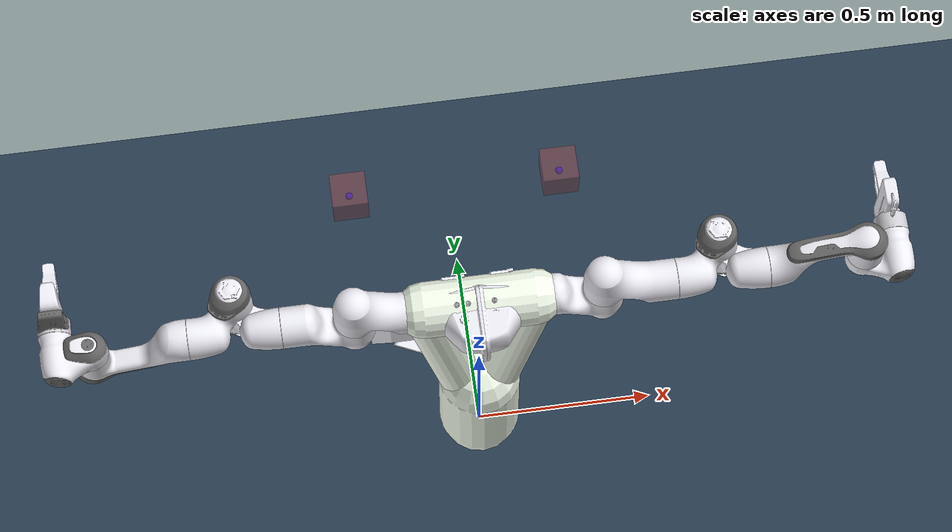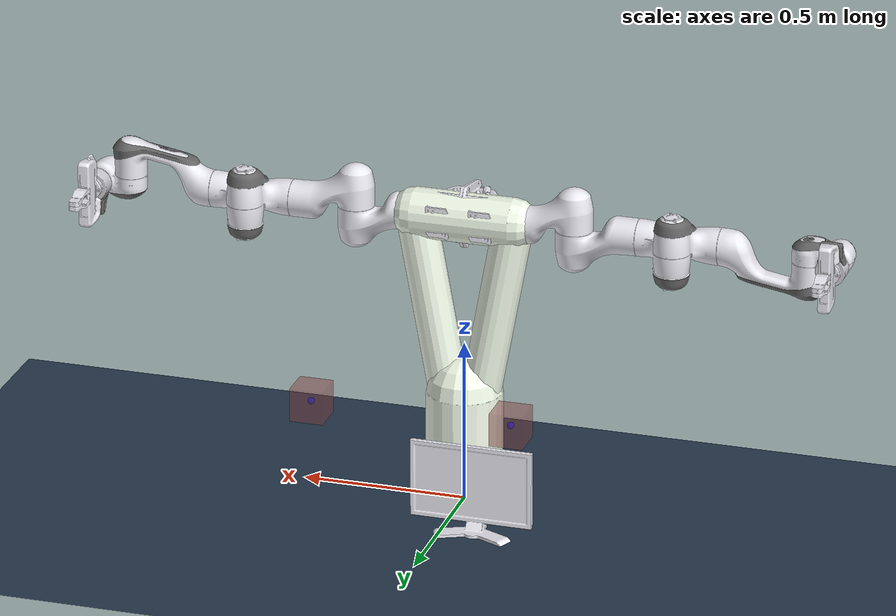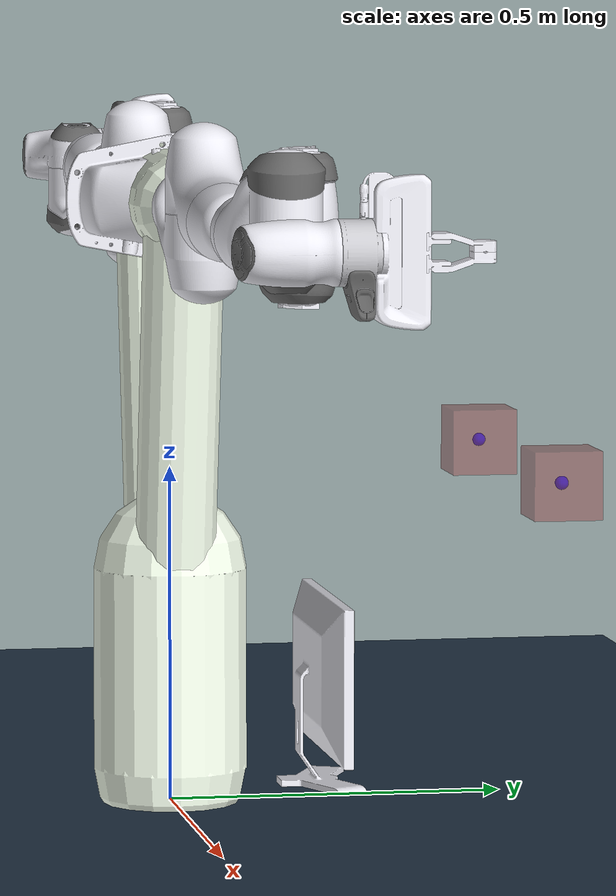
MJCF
<mujoco model="dual-panda v01">

    <include file="panda/assets/basic_scene.xml" />
    <include file="panda/assets/assets.xml" />
    <include file="panda/assets/gripper_assets.xml" />
    <compiler meshdir="" />

    <default>
        <default class='torso'>
            <geom group='2' contype='0' conaffinity='0' rgba=".95 .99 .92 1" />
        </default>/ </default>

    <worldbody>

        <body name='torso' childclass='torso'>
            <geom name='shoulders' type='capsule' size='.075' fromto='.15 0 .9 -.15 0 .9' />
            <geom name='absL' type='capsule' size='.06' fromto='.15 0 .9 0.05 0 .35' />
            <geom name='absR' type='capsule' size='.06' fromto='-.15 0 .9 -.05 0 .35' />
            <geom name='legs' type='capsule' size='.115' fromto='0 0 .35 0 0 0.05' />

            <body name='leftarm' pos='0 0 .9' euler='0 -1.57 1.57'>
                <include file="panda/assets/chainL.xml" />
            </body>

            <body name='rightarm' pos='0 0 .9' euler='0 1.57 1.57'>
                <include file="panda/assets/chainR.xml" />
            </body>

        </body>

        <body name = "collision_object" pos = "0.0 .3 0.0" quat="0 0 0 1">
            <joint type="free" name="object_virtual_joint" pos = "0.0 1.0 0.0" damping="10"/>
            <geom class="object_viz" mesh="monitor_viz"/>
            <geom class="object_col" mesh="monitor_col"/>
            <inertial pos="0 0 0" mass="1.0" diaginertia="2 2 2"/>
        </body>

    </worldbody>

    <include file='panda/assets/actuatorL.xml' />
    <include file='panda/assets/gripper_actuatorL.xml' />
    <include file='panda/assets/actuatorR.xml' />
    <include file='panda/assets/gripper_actuatorR.xml' />

</mujoco>

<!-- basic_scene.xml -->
<mujocoinclude>
    <asset>
        <texture name="texplane" type="2d" builtin="checker" rgb1=".2 .3 .4" rgb2=".1 0.15 0.2"
                width="512" height="512"/>
        <material name="MatGnd" reflectance="0.5" texture="texplane" texrepeat="1 1" texuniform="true"/>
    </asset>

    <worldbody>
        <light directional="false" diffuse=".8 .8 .8" specular="0.3 0.3 0.3" pos="1  1 3" dir="-1 -1 -3"/>
        <light directional="false" diffuse=".8 .8 .8" specular="0.3 0.3 0.3" pos="1 -1 3" dir="-1 1 -3"/>
        <light directional="false" diffuse=".8 .8 .8" specular="0.3 0.3 0.3" pos="-1 0 3" dir="1 0 -3" />
        <geom name="ground" pos="0 0 0" size="5 5 10" material="MatGnd" type="plane" contype="1" conaffinity="1"/>
        <body name="targetL" pos="-0.3 0.53 0.5" quat="0 0 1 0" mocap="true">
            <geom type="box" size=".05 .05 .05" contype="0" conaffinity="0" rgba=".6 .3 .3 .5"/>
            <site type="sphere" size="0.01" rgba="0 0 1 1" group="1"/>
        </body>
        <body name="targetR" pos="0.3 0.53 0.5" quat="0 1 0 0" mocap="true">
            <geom type="box" size=".05 .05 .05" contype="0" conaffinity="0" rgba=".6 .3 .3 .5"/>
            <site type="sphere" size="0.01" rgba="0 0 1 1" group="1"/>
        </body>
    </worldbody>
    <keyframe>
        <key name="home" qpos="0 0 0 0 0 0 0 0 0 0 0 0 0 0 0 0 0 0 -0.15 0.3 0 0 0 0 0" ctrl="0 0 0 0 0 0 0 0 0 0 0 0 0 0 0 0 0 0"/>
    </keyframe>
</mujocoinclude>

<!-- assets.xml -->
<mujocoinclude>
    <compiler angle="radian"/>
    <option timestep="0.002"/>
    <size nuser_actuator="5"/>
    <option integrator="implicit"/>
    <asset>
        <mesh name="link0_col" file="../meshes/collision/link0.stl"/>
        <mesh name="link1_col" file="../meshes/collision/link1.stl"/>
        <mesh name="link2_col" file="../meshes/collision/link2.stl"/>
        <mesh name="link3_col" file="../meshes/collision/link3.stl"/>
        <mesh name="link4_col" file="../meshes/collision/link4.stl"/>
        <mesh name="link5_col" file="../meshes/collision/link5.stl"/>
        <mesh name="link6_col" file="../meshes/collision/link6.stl"/>
        <mesh name="link7_col" file="../meshes/collision/link7.stl"/>
        <mesh name="hand_col" file="../meshes/collision/hand.stl"/>
        <mesh name="link0_viz" file="../meshes/visual/link0.stl"/>
        <mesh name="link1_viz" file="../meshes/visual/link1.stl"/>
        <mesh name="link2_viz" file="../meshes/visual/link2.stl"/>
        <mesh name="link3_viz" file="../meshes/visual/link3.stl"/>
        <mesh name="link3_dark_viz" file="../meshes/visual/link3_dark.stl" scale="1.01 1.01 1.01"/>
        <mesh name="link4_viz" file="../meshes/visual/link4.stl"/>
        <mesh name="link4_dark_viz" file="../meshes/visual/link4_dark.stl" scale="1.01 1.01 1.01"/>
        <mesh name="link5_viz" file="../meshes/visual/link5.stl"/>
        <mesh name="link5_dark_viz" file="../meshes/visual/link5_dark.stl" scale="1.01 1.01 1.01"/>
        <mesh name="link6_viz" file="../meshes/visual/link6.stl"/>
        <mesh name="link6_dark_viz" file="../meshes/visual/link6_dark.stl" scale="1.01 1.01 1.01"/>
        <mesh name="link7_viz" file="../meshes/visual/link7.stl"/>
        <mesh name="link7_dark_viz" file="../meshes/visual/link7_dark.stl" scale="1.01 1.01 1.01"/>
        <mesh name="hand_viz" file="../meshes/visual/hand.stl"/>
    </asset>

    <asset>
        <mesh name="monitor_col" file="../meshes/collision/objects/monitor.stl" scale = "0.02 0.02 0.02"/>
        <mesh name="monitor_viz" file="../meshes/visual/objects/monitor.stl" scale = "0.02 0.02 0.02"/>
    </asset>

    <default>
        <default class = "object">
            <default class="object_viz">
                <geom contype="0" conaffinity="0" group="0" type="mesh" rgba=".92 .92 .95 1"/>
            </default>
            <default class="object_col">
                <geom contype="1" conaffinity="1" group="3" type="mesh" rgba=".5 .6 .7 1"/>
            </default>
        </default>
    </default>

    <default>
        <default class="panda">
            <joint pos="0 0 0" axis="0 0 1" limited="true"/>
            <default class="panda_viz">
                <geom contype="0" conaffinity="0" group="0" type="mesh" rgba=".92 .92 .95 1"/>
            </default>
            <default class="panda_grey_viz">
                <geom contype="0" conaffinity="0" group="0" type="mesh" rgba=".4 .4 .4 1"/>
            </default>

            <default class="panda_col">
                <geom contype="1" conaffinity="1" group="3" type="mesh" rgba=".5 .6 .7 1"/>
            </default>
            <default class="panda_arm">
                <joint damping="100"/>
            </default>
             <default class="panda_forearm">
                <joint damping="10"/>
            </default>
             <default class="panda_finger">
                <joint damping="10" armature='5'/>
                <geom friction="1 0.5 0.0001" solref="0.01 1" solimp="0.8 0.9 0.001" margin="0.001" user="0" rgba="0.5 0.6 0.7 .4" contype="1" conaffinity="0" condim="6" group="3" />
                <position user="1002 40 2001 -0.0001 0.0001"/>
            </default>
        </default>

    </default>

    <sensor>
        <jointpos name="fr_arm_jp1" joint="left_panda_joint1"/>
        <jointpos name="fr_arm_jp2" joint="left_panda_joint2"/>
        <jointpos name="fr_arm_jp3" joint="left_panda_joint3"/>
        <jointpos name="fr_arm_jp4" joint="left_panda_joint4"/>
        <jointpos name="fr_arm_jp5" joint="left_panda_joint5"/>
        <jointpos name="fr_arm_jp6" joint="left_panda_joint6"/>
        <jointpos name="fr_arm_jp7" joint="left_panda_joint7"/>
        <jointvel name="fr_arm_jv1" joint="left_panda_joint1"/>
        <jointvel name="fr_arm_jv2" joint="left_panda_joint2"/>
        <jointvel name="fr_arm_jv3" joint="left_panda_joint3"/>
        <jointvel name="fr_arm_jv4" joint="left_panda_joint4"/>
        <jointvel name="fr_arm_jv5" joint="left_panda_joint5"/>
        <jointvel name="fr_arm_jv6" joint="left_panda_joint6"/>
        <jointvel name="fr_arm_jv7" joint="left_panda_joint7"/>
    </sensor>

</mujocoinclude>

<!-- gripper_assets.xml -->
<mujocoinclude>
    <asset>
        <mesh name="finger_col" file="../meshes/collision/finger.stl" scale='1.75 1.0 1.75'/>
        <mesh name="finger_viz" file="../meshes/visual/finger.stl" scale='1.75 1.0 1.75'/>
    </asset>

    <default>
        <default class="panda_overlay">
            <joint limited="false" damping="1000" armature="1" frictionloss="10"/>
            <geom contype="0" conaffinity="0" group="2" type="mesh" rgba=".42 0.42 0.42 .5"/>
        </default>
    </default>

    <sensor>
        <jointpos name="fr_fin_jp1" joint="left_panda_finger_joint1"/>
        <jointpos name="fr_fin_jp2" joint="left_panda_finger_joint2"/>
        <jointvel name="fr_fin_jv1" joint="left_panda_finger_joint1"/>
        <jointvel name="fr_fin_jv2" joint="left_panda_finger_joint2"/>
    </sensor>

</mujocoinclude>

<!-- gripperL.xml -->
<mujoco>
    <body name="left_panda_hand" pos="0 0 0.107" euler="0 0 -0.785">
        <inertial pos="0 0 0" euler="0 0 0" mass="0.38" diaginertia="0.1 0.1 0.1" />
        <geom class="panda_viz" mesh="hand_viz"/>
        <geom class="panda_col" mesh="hand_col"/>

        <body name="left_panda_leftfinger" pos="0 0 0.0584" quat="1 0 0 0">
            <joint name="left_panda_finger_joint1"  axis="0 1 0" type="slide" range="0 0.04" damping="100" armature='5'/>
            <geom class="panda_viz" mesh="finger_viz"/>
            <geom class="panda_col" mesh="finger_col" mass="0.01"/>
        </body>

        <body name="left_panda_rightfinger" pos="0 0 0.0584" quat="1 0 0 0">
            <joint name="left_panda_finger_joint2" axis="0 -1 0" type="slide" range="0 0.04" damping="100" armature='5'/>
            <geom quat="0 0 0 1" class="panda_viz" mesh="finger_viz"/>
            <geom quat="0 0 0 1" class="panda_col" mesh="finger_col" mass="0.01"/>
        </body>
    </body>
    </mujoco>

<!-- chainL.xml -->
<mujocoinclude>
    <body name="left_panda_link0" childclass="panda" >
        <geom class="panda_viz" mesh="link0_viz"/>
        <geom class="panda_col" mesh="link0_col" mass="2.91242"/>
        <body name="left_panda_link1" pos="0 0 0.333">
            <joint name="left_panda_joint1" range="-2.8973 2.8973" class="panda_arm"/>
            <geom class="panda_viz" mesh="link1_viz"/>
            <geom class="panda_col" mesh="link1_col" mass="2.7063"/>
            <body name="left_panda_link2" pos="0 0 0" quat="0.707107 -0.707107 0 0">
                <joint name="left_panda_joint2" range="-1.7628 1.7628" class="panda_arm"/>
                <geom class="panda_viz" mesh="link2_viz"/>
                <geom class="panda_col" mesh="link2_col" mass="2.73046"/>
                <body name="left_panda_link3" pos="0 -0.316 0" quat="0.707107 0.707107 0 0">
                    <joint name="left_panda_joint3" range="-2.8973 2.8973" class="panda_arm"/>
                    <geom class="panda_viz" mesh="link3_viz"/>
                    <geom class="panda_grey_viz" mesh="link3_dark_viz" pos="0 .001 0"/>
                    <geom class="panda_col" mesh="link3_col" mass="2.04104"/>
                    <body name="left_panda_link4" pos="0.0825 0 0" quat="0.707107 0.707107 0 0">
                        <joint name="left_panda_joint4" range="-3.0718 -0.4" class="panda_arm"/>
                        <geom class="panda_viz" mesh="link4_viz"/>
                        <geom class="panda_grey_viz" mesh="link4_dark_viz"/>
                        <geom class="panda_col" mesh="link4_col" mass="2.08129"/>
                        <body name="left_panda_link5" pos="-0.0825 0.384 0" quat="0.707107 -0.707107 0 0">
                            <joint name="left_panda_joint5" range="-2.8973 2.8973" class="panda_forearm"/>
                            <geom class="panda_viz" mesh="link5_viz"/>
                            <geom class="panda_grey_viz" mesh="link5_dark_viz"/>
                            <geom class="panda_col" mesh="link5_col" mass="3.00049"/>
                            <body name="left_panda_link6" pos="0 0 0" euler='1.57 0 1.57'>
                                <joint name="left_panda_joint6" range="-1.6573 2.1127" class="panda_forearm"/>
                                <geom class="panda_viz" mesh="link6_viz"/>
                                <geom class="panda_grey_viz" mesh="link6_dark_viz"/>
                                <geom class="panda_col" mesh="link6_col" mass="1.3235"/>
                                <body name="left_panda_link7" pos="0.088 0 0" euler='1.57 0 0.7854'>
                                    <joint name="left_panda_joint7" range="-2.8973 2.8973" class="panda_forearm"/>
                                    <geom class="panda_viz" mesh="link7_viz" rgba=".8 .8 .82 1"/>
                                    <geom class="panda_grey_viz" mesh="link7_dark_viz" pos="0 0 -.0008"/>
                                    <geom class="panda_col" mesh="link7_col" mass="0.2"/>
                                    <camera name="Franka_wrist_cam" pos=".050 -.050 0.15" euler="2.95 0.2 -.787"/>
                                    <site name='end_effector' pos='0 0 0.165' size='0.01' euler='1.57 0 0'/>

                                    <!-- End Effector -->
                                    <body name="left_panda_gripper">
                                       <include file = "gripperL.xml" />
                                    </body>
                                </body>
                            </body>
                        </body>
                    </body>
                </body>
            </body>
        </body>
    </body>
</mujocoinclude>

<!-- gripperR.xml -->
<mujoco>
    <body name="right_panda_hand" pos="0 0 0.107" euler="0 0 -0.785">
        <inertial pos="0 0 0" euler="0 0 0" mass="0.38" diaginertia="0.1 0.1 0.1" />
        <geom class="panda_viz" mesh="hand_viz"/>
        <geom class="panda_col" mesh="hand_col"/>

        <body name="right_panda_leftfinger" pos="0 0 0.0584" quat="1 0 0 0">
            <joint name="right_panda_finger_joint1"  axis="0 1 0" type="slide" range="0 0.04" damping="100" armature='5'/>
            <geom class="panda_viz" mesh="finger_viz"/>
            <geom class="panda_col" mesh="finger_col" mass="0.01"/>
        </body>

        <body name="right_panda_rightfinger" pos="0 0 0.0584" quat="1 0 0 0">
            <joint name="right_panda_finger_joint2" axis="0 -1 0" type="slide" range="0 0.04" damping="100" armature='5'/>
            <geom quat="0 0 0 1" class="panda_viz" mesh="finger_viz"/>
            <geom quat="0 0 0 1" class="panda_col" mesh="finger_col" mass="0.01"/>
        </body>
    </body>
    </mujoco>

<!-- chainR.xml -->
<mujocoinclude>
    <body name="right_panda_link0" childclass="panda" >
        <geom class="panda_viz" mesh="link0_viz"/>
        <geom class="panda_col" mesh="link0_col"/>
        <body name="right_panda_link1" pos="0 0 0.333">
            <joint name="right_panda_joint1" range="-2.9671 2.9671" class="panda_arm"/>
            <geom class="panda_viz" mesh="link1_viz"/>
            <geom class="panda_col" mesh="link1_col"/>
            <body name="right_panda_link2" pos="0 0 0" quat="0.707107 -0.707107 0 0">
                <joint name="right_panda_joint2" range="-1.8326 1.8326" class="panda_arm"/>
                <geom class="panda_viz" mesh="link2_viz"/>
                <geom class="panda_col" mesh="link2_col"/>
                <body name="right_panda_link3" pos="0 -0.316 0" quat="0.707107 0.707107 0 0">
                    <joint name="right_panda_joint3" range="-2.9671 2.9671" class="panda_arm"/>
                    <geom class="panda_viz" mesh="link3_viz"/>
                    <geom class="panda_grey_viz" mesh="link3_dark_viz" pos="0 .001 0"/>
                    <geom class="panda_col" mesh="link3_col"/>
                    <body name="right_panda_link4" pos="0.0825 0 0" quat="0.707107 0.707107 0 0">
                        <joint name="right_panda_joint4" range="-3.0718 -0.4" class="panda_arm"/>
                        <geom class="panda_viz" mesh="link4_viz"/>
                        <geom class="panda_grey_viz" mesh="link4_dark_viz"/>
                        <geom class="panda_col" mesh="link4_col"/>
                        <body name="right_panda_link5" pos="-0.0825 0.384 0" quat="0.707107 -0.707107 0 0">
                            <joint name="right_panda_joint5" range="-2.9671 2.9671" class="panda_forearm"/>
                            <geom class="panda_viz" mesh="link5_viz"/>
                            <geom class="panda_grey_viz" mesh="link5_dark_viz"/>
                            <geom class="panda_col" mesh="link5_col"/>
                            <body name="right_panda_link6" pos="0 0 0" euler='1.57 0 1.57'>
                                <joint name="right_panda_joint6" range="-1.6573 2.1127" class="panda_forearm"/>
                                <geom class="panda_viz" mesh="link6_viz"/>
                                <geom class="panda_grey_viz" mesh="link6_dark_viz"/>
                                <geom class="panda_col" mesh="link6_col"/>
                                <body name="right_panda_link7" pos="0.088 0 0" euler='1.57 0 0.7854'>
                                    <joint name="right_panda_joint7" range="-2.8973 2.8973" class="panda_forearm"/>
                                    <geom class="panda_viz" mesh="link7_viz" rgba=".8 .8 .82 1"/>
                                    <geom class="panda_grey_viz" mesh="link7_dark_viz" pos="0 0 -.0008"/>
                                    <geom class="panda_col" mesh="link7_col"/>
                                    <site name='end_effector1' pos='0 0 0.165' size='0.01' euler='1.57 0 0'/>

                                    <!-- End Effector -->
                                    <body name="right_panda_gripper">
                                        <include file="gripperR.xml"/>
                                    </body>
                                </body>
                            </body>
                        </body>
                    </body>
                </body>
            </body>
        </body>
    </body>
</mujocoinclude>

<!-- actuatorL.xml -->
<mujocoinclude>
    <actuator>
        <position class="panda" name="left_panda_joint1" joint="left_panda_joint1" kp="6000" kv="600" forcerange="-870 870" ctrlrange="-2.8973 2.8973"/>
        <position class="panda" name="left_panda_joint2" joint="left_panda_joint2" kp="6000" kv="600" forcerange="-870 870" ctrlrange="-1.7628 1.7628"/>
        <position class="panda" name="left_panda_joint3" joint="left_panda_joint3" kp="4000" kv="400" forcerange="-87 87" ctrlrange="-2.8973 2.8973"/>
        <position class="panda" name="left_panda_joint4" joint="left_panda_joint4" kp="4000" kv="400" forcerange="-87 87" ctrlrange="-3.0718 2.0698"/>
        <position class="panda" name="left_panda_joint5" joint="left_panda_joint5" kp="500" kv="50" forcerange="-12 12" ctrlrange="-2.8973 2.8973"/>
        <position class="panda" name="left_panda_joint6" joint="left_panda_joint6" kp="500" kv="50" forcerange="-12 12" ctrlrange="-2.0175 3.7525"/>
        <position class="panda" name="left_panda_joint7" joint="left_panda_joint7" kp="500" kv="50" forcerange="-12 12" ctrlrange="-2.8973 2.8973"/>
    </actuator>
</mujocoinclude>

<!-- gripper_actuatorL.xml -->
<mujocoinclude>
    <actuator>
        <position name="L_gripper_finger_joint1" joint="left_panda_finger_joint1" class="panda_finger" kp="5000" forcerange="-70 70" ctrlrange="0 0.04"/> velocity=".2"
        <position name="L_gripper_finger_joint2" joint="left_panda_finger_joint2" class="panda_finger" kp="5000" forcerange="-70 70" ctrlrange="0 0.04"/> velocity=".2"
    </actuator>
</mujocoinclude>

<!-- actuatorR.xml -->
<mujocoinclude>
    <actuator>
        <position class="panda" name="right_panda_joint1" joint="right_panda_joint1" kp="6000" kv="600" forcerange="-870 870" ctrlrange="-2.8973 2.8973"/>
        <position class="panda" name="right_panda_joint2" joint="right_panda_joint2" kp="6000" kv="600" forcerange="-870 870" ctrlrange="-1.7628 1.7628"/>
        <position class="panda" name="right_panda_joint3" joint="right_panda_joint3" kp="4000" kv="400" forcerange="-87 87" ctrlrange="-2.8973 2.8973"/>
        <position class="panda" name="right_panda_joint4" joint="right_panda_joint4" kp="4000" kv="400" forcerange="-87 87" ctrlrange="-3.0718 2.0698"/>
        <position class="panda" name="right_panda_joint5" joint="right_panda_joint5" kp="500" kv="50" forcerange="-12 12" ctrlrange="-2.8973 2.8973"/>
        <position class="panda" name="right_panda_joint6" joint="right_panda_joint6" kp="500" kv="50" forcerange="-12 12" ctrlrange="-2.0175 3.7525"/>
        <position class="panda" name="right_panda_joint7" joint="right_panda_joint7" kp="500" kv="50" forcerange="-12 12" ctrlrange="-2.8973 2.8973"/>
    </actuator>
</mujocoinclude>

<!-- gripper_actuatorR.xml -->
<mujocoinclude>
    <actuator>
        <position name="R_gripper_finger_joint1" joint="right_panda_finger_joint1" class="panda_finger" kp="5000" forcerange="-70 70" ctrlrange="0 0.04"/> velocity=".2"
        <position name="R_gripper_finger_joint2" joint="right_panda_finger_joint2" class="panda_finger" kp="5000" forcerange="-70 70" ctrlrange="0 0.04"/> velocity=".2"
    </actuator>
</mujocoinclude>
